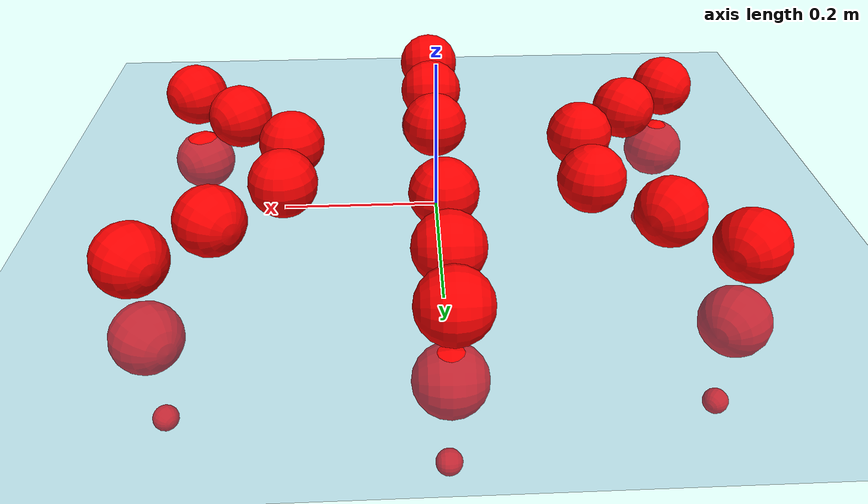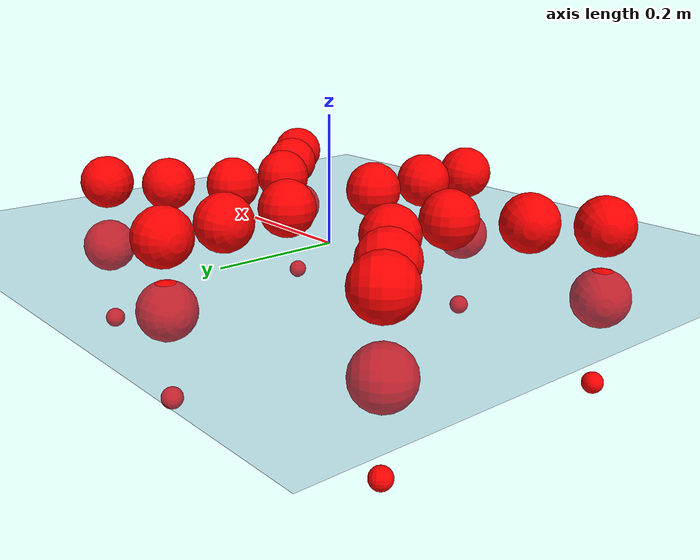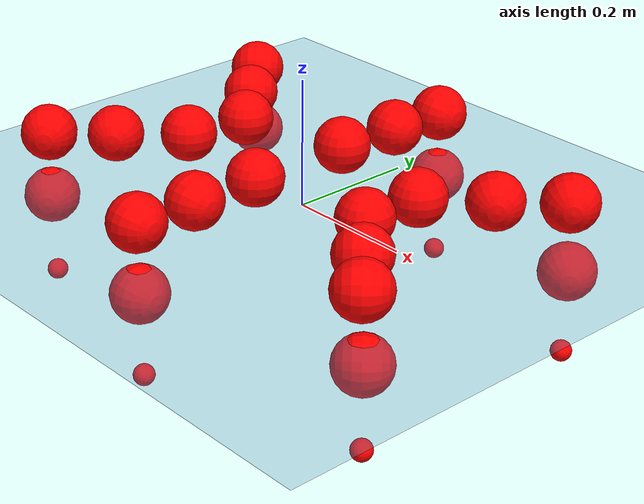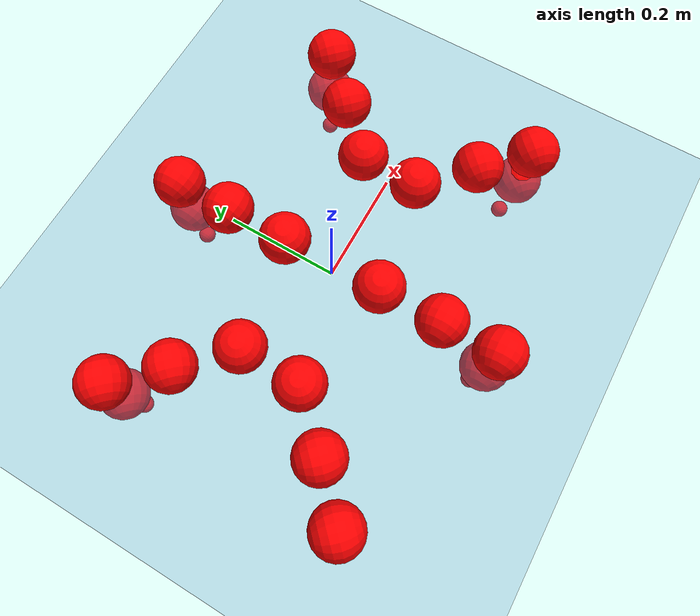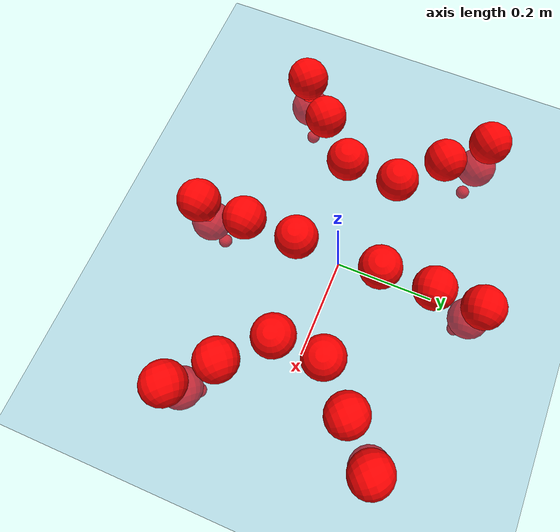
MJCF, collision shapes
<mujoco model="Golem">
  <compiler angle="radian" assetdir="assets" balanceinertia="true" inertiafromgeom="false"/>

  <option timestep="0.005" density="1.2" viscosity="2e-05"/>

  <size nkey="1"/>

  <visual>
    <quality shadowsize="8192"/>
    <map shadowclip="0.5"/>
  </visual>

  <default>
    <default class="/">
      <joint armature="0.01" damping="0.01" frictionloss="0.01"/>
      <geom contype="0" conaffinity="0" group="1" solref="-1000 -80"/>
      <site size="0.01 0.005 0.005" group="5"/>
      <general forcelimited="true" biastype="affine" gainprm="25" biasprm="0 -25 -0.5"/>
      <default class="visual">
        <geom type="mesh" group="2"/>
      </default>
      <default class="collision">
        <geom group="3"/>
      </default>
      <default class="foot">
        <geom size="0.01 0 0" condim="6" group="4" priority="1" solimp="0.015 1 0.01"/>
      </default>
      <default class="reward_collision_sphere">
        <geom group="5" rgba="1 0 0 1"/>
      </default>
    </default>
  </default>

  <asset>
    <texture type="skybox" colorspace="auto" name="//unnamed_texture_0" builtin="gradient" rgb1="0.95 0.95 0.95" rgb2="0.95 0.95 0.95" width="100" height="600"/>
    <texture type="2d" colorspace="auto" name="texplane" builtin="checker" rgb1="0.345 0.575 0.748" rgb2="0.345 0.575 0.748" markrgb="1 1 1" width="512" height="512"/>
    <material name="MatPlane" class="/" texture="texplane" texuniform="true" texrepeat="2 2" specular="0.9"/>
    <mesh name="body" class="/" file="body.stl" scale="0.001 0.001 0.001"/>
    <mesh name="coxa" class="/" file="coxa.stl" scale="0.001 0.001 0.001"/>
    <mesh name="femur" class="/" file="femur.stl" scale="0.001 0.001 0.001"/>
    <mesh name="tibia" class="/" file="tibia.stl" scale="0.001 0.001 0.001"/>
    <mesh name="tarsus" class="/" file="tarsus.stl" scale="0.001 0.001 0.001"/>
  </asset>

  <worldbody>
    <geom name="floor" class="/" size="100 100 0.125" type="plane" group="0" material="MatPlane"/>
    <light name="toplight_shadow" class="/" pos="0 0 5" dir="0.0990148 0.0990148 -0.990148" type="directional" ambient="0.04 0.04 0.04" diffuse="0.55 0.55 0.55" specular="0.12 0.12 0.12"/>
    <light name="toplight_fill" class="/" pos="0 0 5" dir="0.0990148 0.0990148 -0.990148" type="directional" castshadow="false" ambient="0.04 0.04 0.04" diffuse="0.3 0.3 0.3" specular="0.08 0.08 0.08"/>
    <body name="trunk" pos="-0.00274127 -0.00254669 -0.000666701" quat="1 0.000717482 -0.000374595 -0.000280847">
      <inertial pos="0.00312864 -0.001197 -0.00278597" quat="0.999915 -0.0095842 0.00828717 0.00308498" mass="4.97497" diaginertia="0.0289664 0.0078353 0.0160706"/>
      <joint name="//unnamed_joint_0" type="free"/>
      <geom name="//unnamed_geom_1" class="/" pos="0 0 0.0695283" quat="1 0 0 0" type="mesh" rgba="0.9 0.9 0.9 1" mesh="body"/>
      <site name="imu" class="/" pos="0.17389 0.0136821 0.105977" size="0.0108929"/>
      <camera name="track" class="/" pos="0 -1.89788 0" quat="0.707107 0.707107 0 0" mode="trackcom"/>
      <camera name="ego_camera" class="/" pos="0.160233 0 0.108638" quat="-0.5 -0.5 0.5 0.5"/>
      <body name="coxa_RR" pos="-0.220809 -0.0815688 0.0702218" quat="0.382372 -0.000164015 0.000205183 -0.924009">
        <inertial pos="-0.000247552 -0.000863628 0.00119442" quat="0.999996 0.00214102 0.000478112 -0.00153155" mass="0.258763" diaginertia="0.0275168 0.00762255 0.0148911"/>
        <joint name="coxa_joint_RR" class="/" pos="0 0 0" axis="-0.000454689 0.000751761 -1" range="-3.14423 3.10702" armature="0.0113011" damping="0.00363848" frictionloss="0.0114207"/>
        <geom name="//unnamed_geom_2" class="/" type="mesh" rgba="0.2 0.2 0.2 1" mesh="coxa"/>
        <geom name="//unnamed_geom_3" class="reward_collision_sphere" size="0.0435717" pos="-0.0369768 0 0"/>
        <body name="femur_RR" pos="0.0758558 0.00173452 -0.00275236" quat="0.499804 -0.499901 0.50021 0.500085">
          <inertial pos="-0.00196431 -0.000232147 -0.00128328" quat="0.999963 0.00680139 0.00361131 -0.00371942" mass="0.248935" diaginertia="0.0273886 0.00745925 0.0147971"/>
          <joint name="femur_joint_RR" class="/" pos="0 0 0" axis="-0.00631726 0.00574487 -0.999964" stiffness="0.00450838" range="-3.14516 3.13719" armature="0.011475" damping="0.0159001" frictionloss="0.010731"/>
          <geom name="//unnamed_geom_4" class="/" type="mesh" rgba="0.9 0.9 0.9 1" mesh="femur"/>
          <geom name="//unnamed_geom_5" class="reward_collision_sphere" size="0.0435717"/>
          <body name="tibia_RR" pos="0.0013827 -0.10415 -0.00149613" quat="0.000213918 1 -0.000434894 5.25419e-05">
            <inertial pos="0.000539676 -0.000475392 -0.00267475" quat="0.99992 -0.00365849 0.00852685 -0.00854963" mass="0.266908" diaginertia="0.0290104 0.00806683 0.0153698"/>
            <joint name="tibia_joint_RR" class="/" pos="0 0 0" axis="-0.0105554 -0.0107833 0.999886" range="-3.19132 3.14378" armature="0.00987351" damping="0.000720128" frictionloss="0.00935484"/>
            <geom name="//unnamed_geom_6" class="/" type="mesh" rgba="0.2 0.2 0.2 1" mesh="tibia"/>
            <geom name="//unnamed_geom_7" class="reward_collision_sphere" size="0.0435717"/>
            <body name="tarsus_RR" pos="0.106363 0.00224774 -2.58322e-05" quat="1 -2.98759e-05 -0.000242821 3.78908e-05">
              <inertial pos="0.0734013 0.000274897 0.000127963" quat="0.498359 0.494442 0.506264 0.500861" mass="0.253256" diaginertia="0.0280879 0.00742582 0.0150847"/>
              <joint name="tarsus_joint_RR" class="/" pos="0 0 0" axis="-0.00486094 -0.00448758 0.999978" range="-3.12435 3.08483" armature="0.010062" damping="0.0429497" frictionloss="0.0110488"/>
              <geom name="//unnamed_geom_8" class="/" type="mesh" rgba="0.9 0.9 0.9 1" mesh="tarsus"/>
              <geom name="foot_1" class="foot" size="0.0110946" pos="0.138047 0 0" quat="0 -0.707107 0 0.707107"/>
              <geom name="//unnamed_geom_10" class="reward_collision_sphere" size="0.0435717"/>
              <geom name="//unnamed_geom_11" class="reward_collision_sphere" size="0.0163394" pos="0.1325 0 0"/>
              <site name="foot_1" class="foot" pos="0.138047 0 0" quat="0 -0.707107 0 0.707107" size="0.0108929"/>
            </body>
          </body>
        </body>
      </body>
      <body name="coxa_RM" pos="0.00066434 -0.123377 0.0730013" quat="0.707365 -0.00062934 -0.000644855 -0.706848">
        <inertial pos="-0.00269407 0.000427518 -0.00230666" quat="0.999899 0.00594171 0.0123991 -0.00348748" mass="0.258665" diaginertia="0.0270319 0.00767006 0.0147931"/>
        <joint name="coxa_joint_RM" class="/" pos="0 0 0" axis="-5.94357e-05 0.000108172 -1" stiffness="0.000395249" range="-3.12825 3.15959" armature="0.0103866" damping="0.0106897" frictionloss="0.00995968"/>
        <geom name="//unnamed_geom_12" class="/" type="mesh" rgba="0.2 0.2 0.2 1" mesh="coxa"/>
        <geom name="//unnamed_geom_13" class="reward_collision_sphere" size="0.0435717" pos="-0.0369768 0 0"/>
        <body name="femur_RM" pos="0.0747831 0.000577535 -0.00116909" quat="0.50027 -0.499669 0.498983 0.501075">
          <inertial pos="0.00224628 0.000225914 0.000117474" quat="0.999954 -0.00560232 0.00520564 -0.00572133" mass="0.259185" diaginertia="0.028486 0.0074316 0.0153079"/>
          <joint name="femur_joint_RM" class="/" pos="0 0 0" axis="-0.0125497 -0.00513569 -0.999908" range="-3.13962 3.13169" armature="0.0114884" damping="0.0137898" frictionloss="0.0114579"/>
          <geom name="//unnamed_geom_14" class="/" type="mesh" rgba="0.9 0.9 0.9 1" mesh="femur"/>
          <geom name="//unnamed_geom_15" class="reward_collision_sphere" size="0.0435717"/>
          <body name="tibia_RM" pos="0.000586831 -0.10085 -0.00053785" quat="6.5205e-05 1 -0.000117618 -7.68267e-05">
            <inertial pos="-0.00177667 0.00143576 -0.00254542" quat="0.99999 0.00326666 0.00168804 0.00252532" mass="0.266497" diaginertia="0.0294387 0.00742069 0.0147533"/>
            <joint name="tibia_joint_RM" class="/" pos="0 0 0" axis="-0.00718033 0.00981076 0.999926" range="-3.14679 3.11075" armature="0.0112335" damping="0.0112207" frictionloss="0.0101999"/>
            <geom name="//unnamed_geom_16" class="/" type="mesh" rgba="0.2 0.2 0.2 1" mesh="tibia"/>
            <geom name="//unnamed_geom_17" class="reward_collision_sphere" size="0.0435717"/>
            <body name="tarsus_RM" pos="0.111091 0.000741887 -0.000349572" quat="1 -0.000250077 0.000301977 -0.000142794">
              <inertial pos="0.0747658 2.13489e-05 0.000995388" quat="0.501266 0.499843 0.498299 0.500588" mass="0.257605" diaginertia="0.0277872 0.00771369 0.0158102"/>
              <joint name="tarsus_joint_RM" class="/" pos="0 0 0" axis="-0.00291751 -0.0142868 0.999894" range="-3.15648 3.13965" armature="0.0108335" damping="0.00441104" frictionloss="0.0104353"/>
              <geom name="//unnamed_geom_18" class="/" type="mesh" rgba="0.9 0.9 0.9 1" mesh="tarsus"/>
              <geom name="foot_2" class="foot" size="0.0100389" pos="0.138047 0 0" quat="0 -0.707107 0 0.707107"/>
              <geom name="//unnamed_geom_20" class="reward_collision_sphere" size="0.0435717"/>
              <geom name="//unnamed_geom_21" class="reward_collision_sphere" size="0.0163394" pos="0.1325 0 0"/>
              <site name="foot_2" class="foot" pos="0.138047 0 0" quat="0 -0.707107 0 0.707107" size="0.0108929"/>
            </body>
          </body>
        </body>
      </body>
      <body name="coxa_RF" pos="0.219448 -0.0767044 0.0678999" quat="0.923781 0.000321833 -7.07045e-05 -0.382922">
        <inertial pos="-0.00148405 -0.000754874 -0.000750756" quat="0.999909 0.00825704 0.00462538 -0.00964807" mass="0.26617" diaginertia="0.0298823 0.00760879 0.0154094"/>
        <joint name="coxa_joint_RF" class="/" pos="0 0 0" axis="0.00332162 -0.00175069 -0.999993" range="-3.17221 3.14353" armature="0.0123042" damping="0.0123311" frictionloss="0.0104426"/>
        <geom name="//unnamed_geom_22" class="/" type="mesh" rgba="0.2 0.2 0.2 1" mesh="coxa"/>
        <geom name="//unnamed_geom_23" class="reward_collision_sphere" size="0.0435717" pos="-0.0369768 0 0"/>
        <body name="femur_RF" pos="0.0743871 0.000303376 0.00191522" quat="0.500087 -0.499871 0.500149 0.499894">
          <inertial pos="0.00245114 0.00187645 0.0023314" quat="0.999989 0.00451249 0.000741718 0.000995387" mass="0.249686" diaginertia="0.0294293 0.00743754 0.0153428"/>
          <joint name="femur_joint_RF" class="/" pos="0 0 0" axis="0.00888833 -0.0107725 -0.999902" range="-3.15725 3.08226" armature="0.0110399" damping="0.00660711" frictionloss="0.0108789"/>
          <geom name="//unnamed_geom_24" class="/" type="mesh" rgba="0.9 0.9 0.9 1" mesh="femur"/>
          <geom name="//unnamed_geom_25" class="reward_collision_sphere" size="0.0435717"/>
          <body name="tibia_RF" pos="-0.00168942 -0.100254 0.00225585" quat="-0.000217442 1 -0.000443228 6.52035e-05">
            <inertial pos="-0.00183228 -0.00249543 0.00220273" quat="0.999924 0.0111785 0.00487189 -0.00191649" mass="0.268032" diaginertia="0.0283023 0.00762087 0.0151969"/>
            <joint name="tibia_joint_RF" class="/" pos="0 0 0" axis="0.00260817 -0.00393701 0.999989" range="-3.15053 3.07971" armature="0.0115687" damping="0.0153336" frictionloss="0.0105669"/>
            <geom name="//unnamed_geom_26" class="/" type="mesh" rgba="0.2 0.2 0.2 1" mesh="tibia"/>
            <geom name="//unnamed_geom_27" class="reward_collision_sphere" size="0.0435717"/>
            <body name="tarsus_RF" pos="0.109339 0.00235706 -0.00219438" quat="0.999999 -0.000716987 0.0011705 0.000454764">
              <inertial pos="0.0761106 0.000191056 0.000512079" quat="0.499165 0.500626 0.49923 0.500976" mass="0.261883" diaginertia="0.0290805 0.00785668 0.0146083"/>
              <joint name="tarsus_joint_RF" class="/" pos="0 0 0" axis="0.0016463 -0.00211775 0.999996" range="-3.18633 3.13694" armature="0.012473" damping="0.00693247" frictionloss="0.0116841"/>
              <geom name="//unnamed_geom_28" class="/" type="mesh" rgba="0.9 0.9 0.9 1" mesh="tarsus"/>
              <geom name="foot_3" class="foot" size="0.0118021" pos="0.138047 0 0" quat="0 -0.707107 0 0.707107"/>
              <geom name="//unnamed_geom_30" class="reward_collision_sphere" size="0.0435717"/>
              <geom name="//unnamed_geom_31" class="reward_collision_sphere" size="0.0163394" pos="0.1325 0 0"/>
              <site name="foot_3" class="foot" pos="0.138047 0 0" quat="0 -0.707107 0 0.707107" size="0.0108929"/>
            </body>
          </body>
        </body>
      </body>
      <body name="coxa_LR" pos="-0.217398 0.0809791 0.0662753" quat="0.381714 0.000482062 -0.000335309 0.92428">
        <inertial pos="0.00103747 -0.000299418 -0.00150963" quat="0.9999 0.000685897 -0.0141004 0.000349247" mass="0.246564" diaginertia="0.0281119 0.00762376 0.0148453"/>
        <joint name="coxa_joint_LR" class="/" pos="0 0 0" axis="-0.00137379 0.00275059 -0.999995" stiffness="0.0125464" range="-3.14781 3.17174" armature="0.0124416" damping="0.0070999" frictionloss="0.00998686"/>
        <geom name="//unnamed_geom_32" class="/" type="mesh" rgba="0.2 0.2 0.2 1" mesh="coxa"/>
        <geom name="//unnamed_geom_33" class="reward_collision_sphere" size="0.0435717" pos="-0.0369768 0 0"/>
        <body name="femur_LR" pos="0.0740729 0.00157486 -0.00139662" quat="0.499856 -0.49995 0.499658 0.500536">
          <inertial pos="0.000108198 0.000996386 0.000642582" quat="0.999924 0.00526641 -0.00358909 -0.0105345" mass="0.250432" diaginertia="0.0270562 0.00759689 0.0145036"/>
          <joint name="femur_joint_LR" class="/" pos="0 0 0" axis="0.00298662 -0.00114042 0.999995" range="-3.1557 3.08259" armature="0.0122957" damping="0" frictionloss="0.0106294"/>
          <geom name="//unnamed_geom_34" class="/" type="mesh" rgba="0.9 0.9 0.9 1" mesh="femur"/>
          <geom name="//unnamed_geom_35" class="reward_collision_sphere" size="0.0435717"/>
          <body name="tibia_LR" pos="-0.00172083 -0.103742 -0.00221725" quat="0.000360914 0.999999 -0.00102032 -0.000973384">
            <inertial pos="0.0027326 0.00210925 0.000510479" quat="0.999902 0.000691124 0.0122791 -0.00666617" mass="0.251996" diaginertia="0.0292994 0.00804586 0.0149917"/>
            <joint name="tibia_joint_LR" class="/" pos="0 0 0" axis="0.000801133 0.00109329 -0.999999" stiffness="0.0083174" range="-3.15016 3.13464" armature="0.0113268" damping="0.0133212" frictionloss="0.0122191"/>
            <geom name="//unnamed_geom_36" class="/" type="mesh" rgba="0.2 0.2 0.2 1" mesh="tibia"/>
            <geom name="//unnamed_geom_37" class="reward_collision_sphere" size="0.0435717"/>
            <body name="tarsus_LR" pos="0.111586 0.000302554 -0.00180343" quat="1 0.000294357 0.000195043 0.000790033">
              <inertial pos="0.072327 -0.00239935 -0.0010178" quat="0.503432 0.500254 0.492055 0.504167" mass="0.258238" diaginertia="0.0283787 0.00763702 0.014892"/>
              <joint name="tarsus_joint_LR" class="/" pos="0 0 0" axis="0.000650392 -0.000570496 -1" range="-3.12429 3.15154" armature="0.00988317" damping="0.0278637" frictionloss="0.0103511"/>
              <geom name="//unnamed_geom_38" class="/" type="mesh" rgba="0.9 0.9 0.9 1" mesh="tarsus"/>
              <geom name="foot_4" class="foot" size="0.0108579" pos="0.138047 0 0" quat="0.707107 0 -0.707107 0"/>
              <geom name="//unnamed_geom_40" class="reward_collision_sphere" size="0.0435717"/>
              <geom name="//unnamed_geom_41" class="reward_collision_sphere" size="0.0163394" pos="0.1325 0 0"/>
              <site name="foot_4" class="foot" pos="0.138047 0 0" quat="0.707107 0 -0.707107 0" size="0.0108929"/>
            </body>
          </body>
        </body>
      </body>
      <body name="coxa_LM" pos="-0.0031493 0.12454 0.0714317" quat="0.707394 0.000114601 -0.000283791 0.70682">
        <inertial pos="0.00287166 -0.00241911 -0.00194041" quat="0.999906 0.0107699 -0.000886509 0.00838445" mass="0.261489" diaginertia="0.0282337 0.00781689 0.0155247"/>
        <joint name="coxa_joint_LM" class="/" pos="0 0 0" axis="-0.00396748 -0.00118726 -0.999991" stiffness="0.00718905" range="-3.14614 3.14932" armature="0.0115389" damping="0" frictionloss="0.0112844"/>
        <geom name="//unnamed_geom_42" class="/" type="mesh" rgba="0.2 0.2 0.2 1" mesh="coxa"/>
        <geom name="//unnamed_geom_43" class="reward_collision_sphere" size="0.0435717" pos="-0.0369768 0 0"/>
        <body name="femur_LM" pos="0.0735476 0.000129635 -0.00284205" quat="0.499275 -0.500917 0.499378 0.500427">
          <inertial pos="-0.00270299 -0.000309069 -0.00237704" quat="0.99992 0.00318903 0.0122679 0.000285023" mass="0.275977" diaginertia="0.029594 0.00786066 0.0156879"/>
          <joint name="femur_joint_LM" class="/" pos="0 0 0" axis="-0.00321017 0.00100542 0.999994" range="-3.08614 3.14443" armature="0.0124944" damping="0" frictionloss="0.0109521"/>
          <geom name="//unnamed_geom_44" class="/" type="mesh" rgba="0.9 0.9 0.9 1" mesh="femur"/>
          <geom name="//unnamed_geom_45" class="reward_collision_sphere" size="0.0435717"/>
          <body name="tibia_LM" pos="0.00310129 -0.0980817 -0.000329226" quat="4.77307e-05 1 0.000106409 -0.000137489">
            <inertial pos="0.00201665 0.00139024 0.00125519" quat="0.999996 -0.000941442 0.00251142 6.01901e-05" mass="0.261469" diaginertia="0.0279843 0.00751095 0.0157869"/>
            <joint name="tibia_joint_LM" class="/" pos="0 0 0" axis="0.0110771 -0.00173648 -0.999937" range="-3.13285 3.14993" armature="0.0124061" damping="0.00378882" frictionloss="0.00934985"/>
            <geom name="//unnamed_geom_46" class="/" type="mesh" rgba="0.2 0.2 0.2 1" mesh="tibia"/>
            <geom name="//unnamed_geom_47" class="reward_collision_sphere" size="0.0435717"/>
            <body name="tarsus_LM" pos="0.10679 -0.00275969 0.00251656" quat="0.999999 -0.00073549 -0.000738863 -0.00101308">
              <inertial pos="0.0750322 0.00140874 0.00267628" quat="0.497272 0.503274 0.501873 0.497553" mass="0.264056" diaginertia="0.0282945 0.00796467 0.0151616"/>
              <joint name="tarsus_joint_LM" class="/" pos="0 0 0" axis="0.00462685 0.0117859 -0.99992" stiffness="0.0105866" range="-3.15756 3.11698" armature="0.0110873" damping="0.0171177" frictionloss="0.0108514"/>
              <geom name="//unnamed_geom_48" class="/" type="mesh" rgba="0.9 0.9 0.9 1" mesh="tarsus"/>
              <geom name="foot_5" class="foot" size="0.0111578" pos="0.138047 0 0" quat="0.707107 0 -0.707107 0"/>
              <geom name="//unnamed_geom_50" class="reward_collision_sphere" size="0.0435717"/>
              <geom name="//unnamed_geom_51" class="reward_collision_sphere" size="0.0163394" pos="0.1325 0 0"/>
              <site name="foot_5" class="foot" pos="0.138047 0 0" quat="0.707107 0 -0.707107 0" size="0.0108929"/>
            </body>
          </body>
        </body>
      </body>
      <body name="coxa_LF" pos="0.221505 0.0769735 0.0675335" quat="0.924029 -0.00117439 1.81719e-06 0.382321">
        <inertial pos="2.79641e-05 0.00179373 -0.000139271" quat="0.999997 0.000702688 0.00129689 0.00200613" mass="0.25456" diaginertia="0.0280759 0.00812915 0.0155282"/>
        <joint name="coxa_joint_LF" class="/" pos="0 0 0" axis="0.0126164 0.0116528 -0.999853" range="-3.13841 3.11915" armature="0.0114138" damping="0.0179474" frictionloss="0.0111301"/>
        <geom name="//unnamed_geom_52" class="/" type="mesh" rgba="0.2 0.2 0.2 1" mesh="coxa"/>
        <geom name="//unnamed_geom_53" class="reward_collision_sphere" size="0.0435717" pos="-0.0369768 0 0"/>
        <body name="femur_LF" pos="0.0723125 -0.00052488 -0.00258587" quat="0.499679 -0.500321 0.499053 0.500945">
          <inertial pos="0.00283488 0.000290006 0.00137101" quat="0.999918 0.0011589 0.00462033 -0.0118521" mass="0.255268" diaginertia="0.0275147 0.00781481 0.0153245"/>
          <joint name="femur_joint_LF" class="/" pos="0 0 0" axis="-0.00507351 -0.0112616 0.999924" range="-3.14883 3.101" armature="0.0106044" damping="0" frictionloss="0.0108437"/>
          <geom name="//unnamed_geom_54" class="/" type="mesh" rgba="0.9 0.9 0.9 1" mesh="femur"/>
          <geom name="//unnamed_geom_55" class="reward_collision_sphere" size="0.0435717"/>
          <body name="tibia_LF" pos="-0.000943708 -0.105124 -0.00098784" quat="-0.000616252 0.999999 -0.000564232 -0.000871081">
            <inertial pos="-9.69815e-05 -0.00214215 0.000148071" quat="0.99999 0.00192765 0.0024677 -0.00320075" mass="0.258691" diaginertia="0.0275778 0.00768635 0.0149633"/>
            <joint name="tibia_joint_LF" class="/" pos="0 0 0" axis="0.0146477 -0.00187739 -0.999891" range="-3.19374 3.12199" armature="0.0123719" damping="0.00153214" frictionloss="0.0121564"/>
            <geom name="//unnamed_geom_56" class="/" type="mesh" rgba="0.2 0.2 0.2 1" mesh="tibia"/>
            <geom name="//unnamed_geom_57" class="reward_collision_sphere" size="0.0435717"/>
            <body name="tarsus_LF" pos="0.110234 0.00287513 -0.00259905" quat="1 -0.000427093 -0.000323969 -0.000157645">
              <inertial pos="0.0723943 0.000854692 0.000140504" quat="0.503926 0.499377 0.499752 0.49692" mass="0.257195" diaginertia="0.0283064 0.00769947 0.0144871"/>
              <joint name="tarsus_joint_LF" class="/" pos="0 0 0" axis="-0.00193866 -0.00774277 -0.999968" stiffness="0.0284122" range="-3.11883 3.08471" armature="0.0114556" damping="0.0252744" frictionloss="0.0120907"/>
              <geom name="//unnamed_geom_58" class="/" type="mesh" rgba="0.9 0.9 0.9 1" mesh="tarsus"/>
              <geom name="foot_6" class="foot" size="0.00977534" pos="0.138047 0 0" quat="0.707107 0 -0.707107 0"/>
              <geom name="//unnamed_geom_60" class="reward_collision_sphere" size="0.0435717"/>
              <geom name="//unnamed_geom_61" class="reward_collision_sphere" size="0.0163394" pos="0.1325 0 0"/>
              <site name="foot_6" class="foot" pos="0.138047 0 0" quat="0.707107 0 -0.707107 0" size="0.0108929"/>
            </body>
          </body>
        </body>
      </body>
    </body>
  </worldbody>

  <contact>
    <pair class="/" geom1="floor" geom2="foot_1" name="//unnamed_contact_0"/>
    <pair class="/" geom1="floor" geom2="foot_2" name="//unnamed_contact_1"/>
    <pair class="/" geom1="floor" geom2="foot_3" name="//unnamed_contact_2"/>
    <pair class="/" geom1="floor" geom2="foot_4" name="//unnamed_contact_3"/>
    <pair class="/" geom1="floor" geom2="foot_5" name="//unnamed_contact_4"/>
    <pair class="/" geom1="floor" geom2="foot_6" name="//unnamed_contact_5"/>
  </contact>

  <actuator>
    <general name="coxa_joint_RR" class="/" joint="coxa_joint_RR" forcerange="-7.34381 7.34381" gainprm="25.7635" biasprm="0 -25.7635 -0.523436"/>
    <general name="femur_joint_RR" class="/" joint="femur_joint_RR" forcerange="-8.54286 8.54286" gainprm="25.7635" biasprm="0 -25.7635 -0.523436"/>
    <general name="tibia_joint_RR" class="/" joint="tibia_joint_RR" forcerange="-7.49655 7.49655" gainprm="25.7635" biasprm="0 -25.7635 -0.523436"/>
    <general name="tarsus_joint_RR" class="/" joint="tarsus_joint_RR" forcerange="-8.66741 8.66741" gainprm="25.7635" biasprm="0 -25.7635 -0.523436"/>
    <general name="coxa_joint_RM" class="/" joint="coxa_joint_RM" forcerange="-7.93468 7.93468" gainprm="25.7635" biasprm="0 -25.7635 -0.523436"/>
    <general name="femur_joint_RM" class="/" joint="femur_joint_RM" forcerange="-7.90237 7.90237" gainprm="25.7635" biasprm="0 -25.7635 -0.523436"/>
    <general name="tibia_joint_RM" class="/" joint="tibia_joint_RM" forcerange="-7.22842 7.22842" gainprm="25.7635" biasprm="0 -25.7635 -0.523436"/>
    <general name="tarsus_joint_RM" class="/" joint="tarsus_joint_RM" forcerange="-8.46737 8.46737" gainprm="25.7635" biasprm="0 -25.7635 -0.523436"/>
    <general name="coxa_joint_RF" class="/" joint="coxa_joint_RF" forcerange="-7.83996 7.83996" gainprm="25.7635" biasprm="0 -25.7635 -0.523436"/>
    <general name="femur_joint_RF" class="/" joint="femur_joint_RF" forcerange="-7.99145 7.99145" gainprm="25.7635" biasprm="0 -25.7635 -0.523436"/>
    <general name="tibia_joint_RF" class="/" joint="tibia_joint_RF" forcerange="-8.60036 8.60036" gainprm="25.7635" biasprm="0 -25.7635 -0.523436"/>
    <general name="tarsus_joint_RF" class="/" joint="tarsus_joint_RF" forcerange="-8.502 8.502" gainprm="25.7635" biasprm="0 -25.7635 -0.523436"/>
    <general name="coxa_joint_LR" class="/" joint="coxa_joint_LR" forcerange="-7.9225 7.9225" gainprm="25.7635" biasprm="0 -25.7635 -0.523436"/>
    <general name="femur_joint_LR" class="/" joint="femur_joint_LR" forcerange="-7.13332 7.13332" gainprm="25.7635" biasprm="0 -25.7635 -0.523436"/>
    <general name="tibia_joint_LR" class="/" joint="tibia_joint_LR" forcerange="-7.41972 7.41972" gainprm="25.7635" biasprm="0 -25.7635 -0.523436"/>
    <general name="tarsus_joint_LR" class="/" joint="tarsus_joint_LR" forcerange="-7.12433 7.12433" gainprm="25.7635" biasprm="0 -25.7635 -0.523436"/>
    <general name="coxa_joint_LM" class="/" joint="coxa_joint_LM" forcerange="-7.41835 7.41835" gainprm="25.7635" biasprm="0 -25.7635 -0.523436"/>
    <general name="femur_joint_LM" class="/" joint="femur_joint_LM" forcerange="-7.86224 7.86224" gainprm="25.7635" biasprm="0 -25.7635 -0.523436"/>
    <general name="tibia_joint_LM" class="/" joint="tibia_joint_LM" forcerange="-7.10596 7.10596" gainprm="25.7635" biasprm="0 -25.7635 -0.523436"/>
    <general name="tarsus_joint_LM" class="/" joint="tarsus_joint_LM" forcerange="-8.08547 8.08547" gainprm="25.7635" biasprm="0 -25.7635 -0.523436"/>
    <general name="coxa_joint_LF" class="/" joint="coxa_joint_LF" forcerange="-7.61103 7.61103" gainprm="25.7635" biasprm="0 -25.7635 -0.523436"/>
    <general name="femur_joint_LF" class="/" joint="femur_joint_LF" forcerange="-7.96074 7.96074" gainprm="25.7635" biasprm="0 -25.7635 -0.523436"/>
    <general name="tibia_joint_LF" class="/" joint="tibia_joint_LF" forcerange="-8.78298 8.78298" gainprm="25.7635" biasprm="0 -25.7635 -0.523436"/>
    <general name="tarsus_joint_LF" class="/" joint="tarsus_joint_LF" forcerange="-7.44759 7.44759" gainprm="25.7635" biasprm="0 -25.7635 -0.523436"/>
  </actuator>

  <sensor>
    <gyro site="imu" name="imu_angular_velocity"/>
    <velocimeter site="imu" name="imu_linear_velocity"/>
    <framelinvel objtype="site" objname="foot_1" name="foot_1_global_linear_velocity"/>
    <framelinvel objtype="site" objname="foot_2" name="foot_2_global_linear_velocity"/>
    <framelinvel objtype="site" objname="foot_3" name="foot_3_global_linear_velocity"/>
    <framelinvel objtype="site" objname="foot_4" name="foot_4_global_linear_velocity"/>
    <framelinvel objtype="site" objname="foot_5" name="foot_5_global_linear_velocity"/>
    <framelinvel objtype="site" objname="foot_6" name="foot_6_global_linear_velocity"/>
  </sensor>

  <keyframe>
    <key name="home" qpos="0 0 0.1457 1 0 0 0 0 0 0 0 0 0 0 0 0 0 0 0 0 0 0 0 0 0 0 0 0 0 0 0"/>
  </keyframe>
</mujoco>
